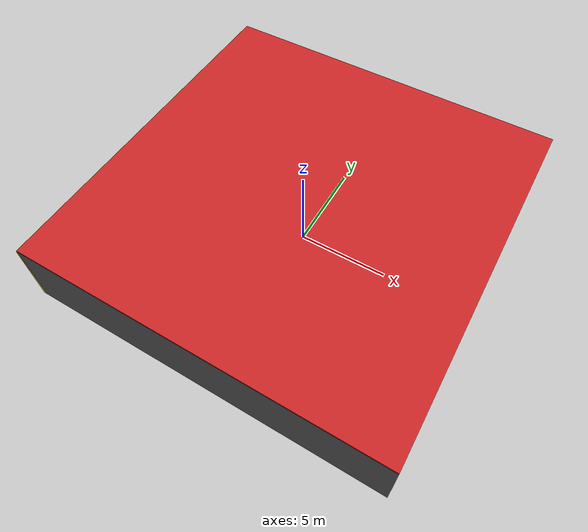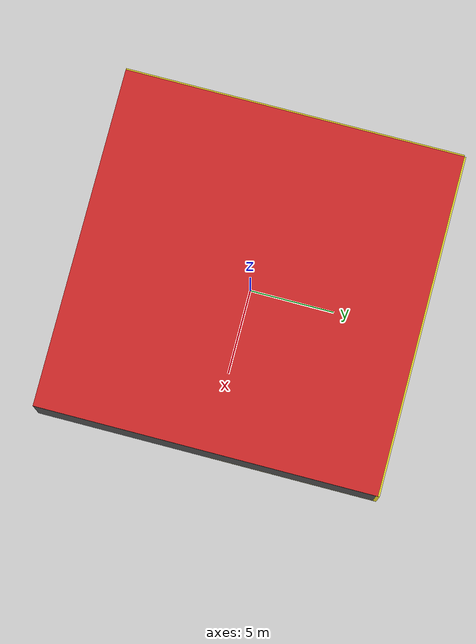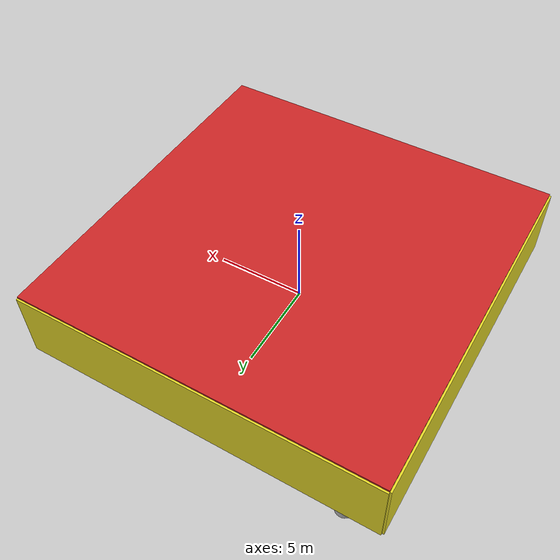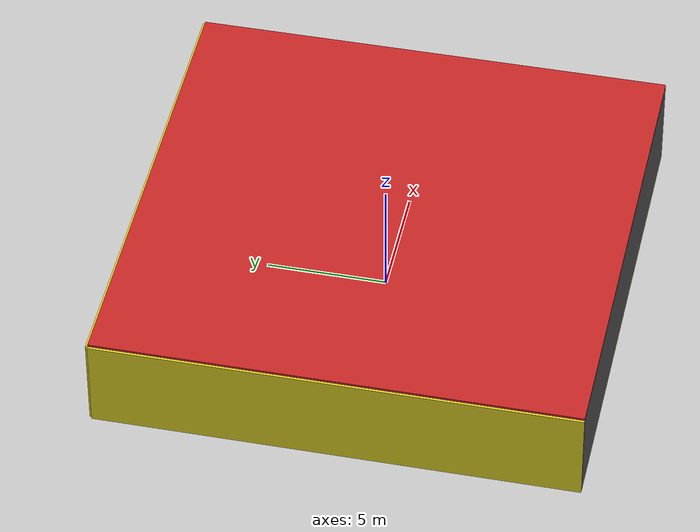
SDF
<sdf version="1.4">
 <world name="default">
  <physics type="ode">
   <max_step_size>0.001</max_step_size>
   <real_time_factor>1</real_time_factor>
   <real_time_update_rate>1000</real_time_update_rate>
   <gravity>0 0 -9.8</gravity>
  </physics>
  <scene><ambient>0.4 0.4 0.4 1</ambient><background>0.7 0.7 0.7 1</background><shadows>1</shadows></scene>
  <model name="Surrounding">
   <static>1</static>
   <link name="Ceiling">
    <collision name="Ceiling_Collision"><geometry><box><size>20 20 0.1</size></box></geometry></collision>
    <visual name="Ceiling_Visual">
     <geometry><box><size>20 20 0.1</size></box></geometry>
     <material>
      <script><uri>file://media/materials/scripts/gazebo.material</uri><name>Gazebo/Red</name></script>
     </material>
    </visual>
    <pose>0 0 4.05 0 0 0</pose>
   </link>
   <link name="Wall_South">
    <collision name="Wall_South_Collision">
     <geometry><box><size>20 0 4</size></box></geometry>
     <pose>0 0 2 0 -0 0</pose>
    </collision>
    <visual name="Wall_South_Visual">
     <pose>0 0 2 0 -0 0</pose>
     <geometry><box><size>20 0 4</size></box></geometry>
     <material>
      <script><uri>file://media/materials/scripts/gazebo.material</uri><name>Gazebo/DarkGrey</name></script>
     </material>
    </visual>
    <velocity_decay><linear>0</linear><angular>0</angular></velocity_decay>
    <pose>0 -10 0 0 -0 0</pose>
   </link>
   <link name="Wall_East">
    <collision name="Wall_21_Collision">
     <geometry><box><size>20 0 4</size></box></geometry>
     <pose>0 0 2 0 -0 0</pose>
    </collision>
    <visual name="Wall_21_Visual">
     <pose>0 0 2 0 -0 0</pose>
     <geometry><box><size>20 0 4</size></box></geometry>
     <material>
      <script><uri>file://media/materials/scripts/gazebo.material</uri><name>Gazebo/DarkGrey</name></script>
     </material>
    </visual>
    <velocity_decay><linear>0</linear><angular>0</angular></velocity_decay>
    <pose>10 0 0 0 -0 1.5708</pose>
   </link>
   <link name="Wall_North">
    <collision name="Wall_22_Collision">
     <geometry><box><size>20 0.2 4</size></box></geometry>
     <pose>0 0 2 0 -0 0</pose>
    </collision>
    <visual name="Wall_22_Visual">
     <pose>0 0 2 0 -0 0</pose>
     <geometry><box><size>20 0.2 4</size></box></geometry>
     <material>
      <script><uri>file://media/materials/scripts/gazebo.material</uri><name>Gazebo/YellowGlow</name></script>
     </material>
    </visual>
    <velocity_decay><linear>0</linear><angular>0</angular></velocity_decay>
    <pose>0 10 0 0 -0 0</pose>
   </link>
   <link name="Wall_West">
    <collision name="Wall_23_Collision">
     <geometry><box><size>20 0.2 4</size></box></geometry>
     <pose>0 0 2 0 -0 0</pose>
    </collision>
    <visual name="Wall_23_Visual">
     <pose>0 0 2 0 -0 0</pose>
     <geometry><box><size>20 0.2 4</size></box></geometry>
     <material>
      <script><uri>file://media/materials/scripts/gazebo.material</uri><name>Gazebo/Yellow</name></script>
     </material>
    </visual>
    <velocity_decay><linear>0</linear><angular>0</angular></velocity_decay>
    <pose>-10 0 0 0 0 -1.5708</pose>
   </link>
   <link name="Ground_link">
    <collision name="collision">
     <pose>0 0 .05 0 -0 0</pose>
     <geometry><box><size>20 20 0.1</size></box></geometry>
    </collision>
    <visual name="visual">
     <pose>0 0 .05 0 -0 0</pose>
     <geometry><box><size>20 20 0.1</size></box></geometry>
     <material>
      <script><uri>file://media/materials/scripts/gazebo.material</uri><name>Gazebo/ZincYellow</name></script>
     </material>
    </visual>
   </link>
   <static>1</static>
  </model>
  <spherical_coordinates>
   <surface_model>EARTH_WGS84</surface_model>
   <latitude_deg>0</latitude_deg>
   <longitude_deg>0</longitude_deg>
   <elevation>0</elevation>
   <heading_deg>0</heading_deg>
  </spherical_coordinates>
  <light name="lightball_0" type="diffuse">
   <diffuse>0.8 0.8 0.8 1</diffuse>
   <specular>0.2 0.2 0.2 1</specular>
   <attenuation>
    <range>100</range>
    <constant>0.7</constant>
    <linear>0.01</linear>
    <quadratic>0.001</quadratic>
   </attenuation>
   <direction>-0.5 0.1 -0.9</direction>
   <pose>0.923615970748 0.256932590733 2.10584769551 0 0 0</pose>
  </light>
  <light name="lightball_1" type="diffuse">
   <diffuse>0.8 0.8 0.8 1</diffuse>
   <specular>0.2 0.2 0.2 1</specular>
   <attenuation>
    <range>100</range>
    <constant>0.7</constant>
    <linear>0.01</linear>
    <quadratic>0.001</quadratic>
   </attenuation>
   <direction>-0.5 0.1 -0.9</direction>
   <pose>7.88238294513 -6.71322670235 3.81496600851 0 0 0</pose>
  </light>
  <light name="lightball_2" type="diffuse">
   <diffuse>0.8 0.8 0.8 1</diffuse>
   <specular>0.2 0.2 0.2 1</specular>
   <attenuation>
    <range>100</range>
    <constant>0.7</constant>
    <linear>0.01</linear>
    <quadratic>0.001</quadratic>
   </attenuation>
   <direction>-0.5 0.1 -0.9</direction>
   <pose>7.74638362202 -7.63459371812 2.52866183932 0 0 0</pose>
  </light>
  <light name="lightball_3" type="diffuse">
   <diffuse>0.8 0.8 0.8 1</diffuse>
   <specular>0.2 0.2 0.2 1</specular>
   <attenuation>
    <range>100</range>
    <constant>0.7</constant>
    <linear>0.01</linear>
    <quadratic>0.001</quadratic>
   </attenuation>
   <direction>-0.5 0.1 -0.9</direction>
   <pose>2.39004740525 5.11336652445 3.43039485674 0 0 0</pose>
  </light>
  <light name="lightball_4" type="diffuse">
   <diffuse>0.8 0.8 0.8 1</diffuse>
   <specular>0.2 0.2 0.2 1</specular>
   <attenuation>
    <range>100</range>
    <constant>0.7</constant>
    <linear>0.01</linear>
    <quadratic>0.001</quadratic>
   </attenuation>
   <direction>-0.5 0.1 -0.9</direction>
   <pose>-5.97959566942 5.39478188992 1.96989845178 0 0 0</pose>
  </light>
  <light name="lightball_5" type="diffuse">
   <diffuse>0.8 0.8 0.8 1</diffuse>
   <specular>0.2 0.2 0.2 1</specular>
   <attenuation>
    <range>100</range>
    <constant>0.7</constant>
    <linear>0.01</linear>
    <quadratic>0.001</quadratic>
   </attenuation>
   <direction>-0.5 0.1 -0.9</direction>
   <pose>1.59768578194 1.8072336184 1.66924132663 0 0 0</pose>
  </light>
  <light name="lightball_6" type="diffuse">
   <diffuse>0.8 0.8 0.8 1</diffuse>
   <specular>0.2 0.2 0.2 1</specular>
   <attenuation>
    <range>100</range>
    <constant>0.7</constant>
    <linear>0.01</linear>
    <quadratic>0.001</quadratic>
   </attenuation>
   <direction>-0.5 0.1 -0.9</direction>
   <pose>1.22882137135 -8.19843709567 2.76686661271 0 0 0</pose>
  </light>
  <light name="lightball_7" type="diffuse">
   <diffuse>0.8 0.8 0.8 1</diffuse>
   <specular>0.2 0.2 0.2 1</specular>
   <attenuation>
    <range>100</range>
    <constant>0.7</constant>
    <linear>0.01</linear>
    <quadratic>0.001</quadratic>
   </attenuation>
   <direction>-0.5 0.1 -0.9</direction>
   <pose>3.8558055397 -5.58459350334 1.4573146858 0 0 0</pose>
  </light>
  <light name="lightball_8" type="diffuse">
   <diffuse>0.8 0.8 0.8 1</diffuse>
   <specular>0.2 0.2 0.2 1</specular>
   <attenuation>
    <range>100</range>
    <constant>0.7</constant>
    <linear>0.01</linear>
    <quadratic>0.001</quadratic>
   </attenuation>
   <direction>-0.5 0.1 -0.9</direction>
   <pose>-5.43644414933 -6.11028699168 1.66642161251 0 0 0</pose>
  </light>
  <light name="lightball_9" type="diffuse">
   <diffuse>0.8 0.8 0.8 1</diffuse>
   <specular>0.2 0.2 0.2 1</specular>
   <attenuation>
    <range>100</range>
    <constant>0.7</constant>
    <linear>0.01</linear>
    <quadratic>0.001</quadratic>
   </attenuation>
   <direction>-0.5 0.1 -0.9</direction>
   <pose>-5.05393026013 -6.41408230104 2.44157694522 0 0 0</pose>
  </light>
  <light name="lightball_10" type="diffuse">
   <diffuse>0.8 0.8 0.8 1</diffuse>
   <specular>0.2 0.2 0.2 1</specular>
   <attenuation>
    <range>100</range>
    <constant>0.7</constant>
    <linear>0.01</linear>
    <quadratic>0.001</quadratic>
   </attenuation>
   <direction>-0.5 0.1 -0.9</direction>
   <pose>-2.8634830656 -5.89545754307 1.85496011219 0 0 0</pose>
  </light>
  <light name="lightball_11" type="diffuse">
   <diffuse>0.8 0.8 0.8 1</diffuse>
   <specular>0.2 0.2 0.2 1</specular>
   <attenuation>
    <range>100</range>
    <constant>0.7</constant>
    <linear>0.01</linear>
    <quadratic>0.001</quadratic>
   </attenuation>
   <direction>-0.5 0.1 -0.9</direction>
   <pose>7.64063599589 7.03952257073 1.08104561994 0 0 0</pose>
  </light>
  <light name="lightball_12" type="diffuse">
   <diffuse>0.8 0.8 0.8 1</diffuse>
   <specular>0.2 0.2 0.2 1</specular>
   <attenuation>
    <range>100</range>
    <constant>0.7</constant>
    <linear>0.01</linear>
    <quadratic>0.001</quadratic>
   </attenuation>
   <direction>-0.5 0.1 -0.9</direction>
   <pose>1.82722125112 5.40444774176 3.85116886233 0 0 0</pose>
  </light>
  <include>
   <uri>model://textured_shapes</uri>
   <pose>-7.66915556662 8.09021212047 0 0 0 0.186808375719</pose>
  </include>
  <include><uri>model://cabinet</uri><pose>-0.956846060296 -4.21749551536 0 0 0 0.439353860422</pose></include>
  <include>
   <uri>model://textured_shapes</uri>
   <pose>2.01275313659 -5.05199185448 0 0 0 0.6480146416</pose>
  </include>
  <include>
   <uri>model://construction_cone</uri>
   <pose>1.93883195003 0.895546064478 0 0 0 2.68478113603</pose>
  </include>
  <include><uri>model://table</uri><pose>7.30440431176 -1.78610260742 0 0 0 1.06408418547</pose></include>
  <include>
   <uri>model://robocup_3Dsim_goal</uri>
   <pose>7.61062048638 7.8784491657 0 0 0 3.09429404395</pose>
  </include>
 </world>
</sdf>

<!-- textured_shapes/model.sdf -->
<sdf version="1.6">
  <model name="textured_shapes">
    <pose>0 0 0.5 0 0 0</pose>
    <link name="box">
      <pose>0 -1.5 0 0 0 0</pose>
      <collision name="collision">
        <geometry>
          <box>
            <size>1 1 1</size>
          </box>
        </geometry>
      </collision>
      <visual name="visual">
        <geometry>
          <box>
            <size>1 1 1</size>
          </box>
        </geometry>
        <material>
          <script>
            <uri>model://../model_source/models/textured_shapes/materials/scripts</uri>
            <uri>model://../model_source/models/textured_shapes/materials/textures</uri>
            <name>TexturedShape/Squares</name>
          </script>
        </material>
      </visual>
    </link>
    <link name="sphere">
      <collision name="collision">
        <geometry>
          <sphere>
            <radius>0.5</radius>
          </sphere>
        </geometry>
      </collision>
      <visual name="visual">
        <geometry>
          <sphere>
            <radius>0.5</radius>
          </sphere>
        </geometry>
        <material>
          <script>
            <uri>model://../model_source/models/textured_shapes/materials/scripts</uri>
            <uri>model://../model_source/models/textured_shapes/materials/textures</uri>
            <name>TexturedShape/Squares</name>
          </script>
        </material>
      </visual>
    </link>
    <link name="cylinder">
      <pose>0 1.5 0 0 0 0</pose>
      <collision name="collision">
        <geometry>
          <cylinder>
            <radius>0.5</radius>
            <length>1</length>
          </cylinder>
        </geometry>
      </collision>
      <visual name="visual">
        <geometry>
          <cylinder>
            <radius>0.5</radius>
            <length>1</length>
          </cylinder>
        </geometry>
        <material>
          <script>
            <uri>model://../model_source/models/textured_shapes/materials/scripts</uri>
            <uri>model://../model_source/models/textured_shapes/materials/textures</uri>
            <name>TexturedShape/Squares</name>
          </script>
        </material>
      </visual>
    </link>
  </model>
</sdf>

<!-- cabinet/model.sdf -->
<sdf version="1.5">
  <model name="cabinet">
    <static>true</static>
    <link name="cabinet_bottom_plate">
      <inertial>
        <pose>0 0 -1 0 0 0</pose>
        <inertia>
          <ixx>2.050000</ixx>
          <ixy>0</ixy>
          <ixz>0</ixz>
          <iyy>2.050000</iyy>
          <iyz>0</iyz>
          <izz>2.050000</izz>
        </inertia>
        <mass>25.000000</mass>
      </inertial>
      <collision name="cabinet_bottom_plate_geom">
        <pose>0 0 0.010000 0 0 0</pose>
        <geometry>
          <box>
            <size>0.450000 0.450000 0.020000</size>
          </box>
        </geometry>
      </collision>
      <visual name="cabinet_bottom_plate_geom_visual">
        <pose>0 0 0.010000 0 0 0</pose>
        <geometry>
          <box>
            <size>0.450000 0.450000 0.020000</size>
          </box>
        </geometry>
        <material>
          <script>
            <uri>model://media/materials/scripts/gazebo.material</uri>
            <name>Gazebo/Wood</name>
          </script>
        </material>
      </visual>
      <collision name="cabinet_bottom_plate_geom_cabinet_back_plate">
        <pose>0.235000 0 0.510000 0 0 0</pose>
        <geometry>
          <box>
            <size>0.020000 0.450000 1.020000</size>
          </box>
        </geometry>
      </collision>
      <visual name="cabinet_bottom_plate_geom_cabinet_back_plate_visual">
        <pose>0.235000 0 0.510000 0 0 0</pose>
        <geometry>
          <box>
            <size>0.020000 0.450000 1.020000</size>
          </box>
        </geometry>
        <material>
          <script>
            <uri>model://media/materials/scripts/gazebo.material</uri>
            <name>Gazebo/Wood</name>
          </script>
        </material>
      </visual>
      <collision name="cabinet_bottom_plate_geom_cabinet_left_plate">
        <pose>0 0.235000 0.510000 0 0 0</pose>
        <geometry>
          <box>
            <size>0.450000 0.020000 1.020000</size>
          </box>
        </geometry>
      </collision>
      <visual name="cabinet_bottom_plate_geom_cabinet_left_plate_visual">
        <pose>0 0.235000 0.510000 0 0 0</pose>
        <geometry>
          <box>
            <size>0.450000 0.020000 1.020000</size>
          </box>
        </geometry>
        <material>
          <script>
            <uri>model://media/materials/scripts/gazebo.material</uri>
            <name>Gazebo/Wood</name>
          </script>
        </material>
      </visual>
      <collision name="cabinet_bottom_plate_geom_cabinet_middle_plate">
        <pose>0 0 0.510000 0 0 0</pose>
        <geometry>
          <box>
            <size>0.450000 0.450000 0.020000</size>
          </box>
        </geometry>
      </collision>
      <visual name="cabinet_bottom_plate_geom_cabinet_middle_plate_visual">
        <pose>0 0 0.510000 0 0 0</pose>
        <geometry>
          <box>
            <size>0.450000 0.450000 0.020000</size>
          </box>
        </geometry>
        <material>
          <script>
            <uri>model://media/materials/scripts/gazebo.material</uri>
            <name>Gazebo/Wood</name>
          </script>
        </material>
      </visual>
      <collision name="cabinet_bottom_plate_geom_cabinet_right_plate">
        <pose>0 -0.235000 0.510000 0 0 0</pose>
        <geometry>
          <box>
            <size>0.450000 0.020000 1.020000</size>
          </box>
        </geometry>
      </collision>
      <visual name="cabinet_bottom_plate_geom_cabinet_right_plate_visual">
        <pose>0 -0.235000 0.510000 0 0 0</pose>
        <geometry>
          <box>
            <size>0.450000 0.020000 1.020000</size>
          </box>
        </geometry>
        <material>
          <script>
            <uri>model://media/materials/scripts/gazebo.material</uri>
            <name>Gazebo/Wood</name>
          </script>
        </material>
      </visual>
      <collision name="cabinet_bottom_plate_geom_cabinet_top_plate">
        <pose>0 0 1.010000 0 0 0</pose>
        <geometry>
          <box>
            <size>0.450000 0.450000 0.020000</size>
          </box>
        </geometry>
      </collision>
      <visual name="cabinet_bottom_plate_geom_cabinet_top_plate_visual">
        <pose>0 0 1.010000 0 0 0</pose>
        <geometry>
          <box>
            <size>0.450000 0.450000 0.020000</size>
          </box>
        </geometry>
        <material>
          <script>
            <uri>model://media/materials/scripts/gazebo.material</uri>
            <name>Gazebo/Wood</name>
          </script>
        </material>
      </visual>
    </link>
  </model>
</sdf>

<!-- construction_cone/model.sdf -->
<sdf version="1.5">
  <model name="Construction Cone">
    <link name="link">
      <collision name="collision">
        <geometry>
          <mesh>
            <scale>10 10 10</scale>
            <uri>file://isr-testbed/construction_cone/meshes/construction_cone.dae</uri>
          </mesh>
        </geometry>
      </collision>
      <visual name="visual">
        <geometry>
          <mesh>
            <scale>10 10 10</scale>
            <uri>file://isr-testbed/construction_cone/meshes/construction_cone.dae</uri>
          </mesh>
        </geometry>
      </visual>
    </link>
  </model>
</sdf>

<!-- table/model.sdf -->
<sdf version="1.5">
  <model name="table">
    <static>true</static>
    <link name="link">
      <collision name="surface">
        <pose>0 0 1.0 0 0 0</pose>
        <geometry>
          <box>
            <size>1.5 0.8 0.03</size>
          </box>
        </geometry>
        <surface>
          <friction>
            <ode>
              <mu>0.6</mu>
              <mu2>0.6</mu2>
            </ode>
          </friction>
        </surface>
      </collision>
      <visual name="visual1">
        <pose>0 0 1.0 0 0 0</pose>
        <geometry>
          <box>
            <size>1.5 0.8 0.03</size>
          </box>
        </geometry>
        <material>
          <script>
            <uri>model://media/materials/scripts/gazebo.material</uri>
            <name>Gazebo/Wood</name>
          </script>
        </material>
      </visual>
      <collision name="front_left_leg">
        <pose>0.68 0.38 0.5 0 0 0</pose>
        <geometry>
          <cylinder>
            <radius>0.02</radius>
            <length>1.0</length>
          </cylinder>
        </geometry>
      </collision>
      <visual name="front_left_leg">
        <pose>0.68 0.38 0.5 0 0 0</pose>
        <geometry>
          <cylinder>
            <radius>0.02</radius>
            <length>1.0</length>
          </cylinder>
        </geometry>
        <material>
          <script>
            <uri>model://media/materials/scripts/gazebo.material</uri>
            <name>Gazebo/Grey</name>
          </script>
        </material>
      </visual>
      <collision name="front_right_leg">
        <pose>0.68 -0.38 0.5 0 0 0</pose>
        <geometry>
          <cylinder>
            <radius>0.02</radius>
            <length>1.0</length>
          </cylinder>
        </geometry>
      </collision>
      <visual name="front_right_leg">
        <pose>0.68 -0.38 0.5 0 0 0</pose>
        <geometry>
          <cylinder>
            <radius>0.02</radius>
            <length>1.0</length>
          </cylinder>
        </geometry>
        <material>
          <script>
            <uri>model://media/materials/scripts/gazebo.material</uri>
            <name>Gazebo/Grey</name>
          </script>
        </material>
      </visual>
      <collision name="back_right_leg">
        <pose>-0.68 -0.38 0.5 0 0 0</pose>
        <geometry>
          <cylinder>
            <radius>0.02</radius>
            <length>1.0</length>
          </cylinder>
        </geometry>
      </collision>
      <visual name="back_right_leg">
        <pose>-0.68 -0.38 0.5 0 0 0</pose>
        <geometry>
          <cylinder>
            <radius>0.02</radius>
            <length>1.0</length>
          </cylinder>
        </geometry>
        <material>
          <script>
            <uri>model://media/materials/scripts/gazebo.material</uri>
            <name>Gazebo/Grey</name>
          </script>
        </material>
      </visual>
      <collision name="back_left_leg">
        <pose>-0.68 0.38 0.5 0 0 0</pose>
        <geometry>
          <cylinder>
            <radius>0.02</radius>
            <length>1.0</length>
          </cylinder>
        </geometry>
      </collision>
      <visual name="back_left_leg">
        <pose>-0.68 0.38 0.5 0 0 0</pose>
        <geometry>
          <cylinder>
            <radius>0.02</radius>
            <length>1.0</length>
          </cylinder>
        </geometry>
        <material>
          <script>
            <uri>model://media/materials/scripts/gazebo.material</uri>
            <name>Gazebo/Grey</name>
          </script>
        </material>
      </visual>
    </link>
  </model>
</sdf>

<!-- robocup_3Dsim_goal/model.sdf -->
<sdf version="1.5">
  <model name="robocup_3d_goal">
    <static>true</static>
    <link name="left_post">
      <pose>0 1.05 0.45 0 0 0</pose>
      <collision name="collision">
        <geometry>
          <cylinder>
            <radius>0.05</radius>
            <length>0.9</length>
          </cylinder>
        </geometry>
      </collision>
      <visual name="visual">
        <geometry>
          <cylinder>
            <radius>0.05</radius>
            <length>0.9</length>
          </cylinder>
        </geometry>
        <material>
          <script>
            <uri>file://media/materials/scripts/gazebo.material</uri>
            <name>Gazebo/ZincYellow</name>
          </script>
        </material>
      </visual>
    </link>
    <link name="left_support_horiz_lower">
      <pose>0.30 1.05 0.01 0 0 0</pose>
      <collision name="collision">
        <geometry>
          <box>
            <size>0.50 0.02 0.02</size>
          </box>
        </geometry>
      </collision>
      <visual name="visual">
        <geometry>
          <box>
            <size>0.50 0.02 0.02</size>
          </box>
        </geometry>
        <material>
          <script>
            <uri>file://media/materials/scripts/gazebo.material</uri>
            <name>Gazebo/White</name>
          </script>
        </material>
      </visual>
    </link>
    <link name="left_support_horiz_upper">
      <pose>0.30 1.05 0.79 0 0 0</pose>
      <collision name="collision">
        <geometry>
          <box>
            <size>0.50 0.02 0.02</size>
          </box>
        </geometry>
      </collision>
      <visual name="visual">
        <geometry>
          <box>
            <size>0.50 0.02 0.02</size>
          </box>
        </geometry>
        <material>
          <script>
            <uri>file://media/materials/scripts/gazebo.material</uri>
            <name>Gazebo/White</name>
          </script>
        </material>
      </visual>
    </link>
    <link name="left_support_vertical">
      <pose>0.56 1.05 0.4 0 1.5708 0</pose>
      <collision name="collision">
        <geometry>
          <box>
            <size>0.80 0.02 0.02</size>
          </box>
        </geometry>
      </collision>
      <visual name="visual">
        <geometry>
          <box>
            <size>0.80 0.02 0.02</size>
          </box>
        </geometry>
        <material>
          <script>
            <uri>file://media/materials/scripts/gazebo.material</uri>
            <name>Gazebo/White</name>
          </script>
        </material>
      </visual>
    </link>
    <link name="right_support_horiz_lower">
      <pose>0.30 -1.05 0.01 0 0 0</pose>
      <collision name="collision">
        <geometry>
          <box>
            <size>0.50 0.02 0.02</size>
          </box>
        </geometry>
      </collision>
      <visual name="visual">
        <geometry>
          <box>
            <size>0.50 0.02 0.02</size>
          </box>
        </geometry>
        <material>
          <script>
            <uri>file://media/materials/scripts/gazebo.material</uri>
            <name>Gazebo/White</name>
          </script>
        </material>
      </visual>
    </link>
    <link name="right_support_horiz_upper">
      <pose>0.30 -1.05 0.79 0 0 0</pose>
      <collision name="collision">
        <geometry>
          <box>
            <size>0.50 0.02 0.02</size>
          </box>
        </geometry>
      </collision>
      <visual name="visual">
        <geometry>
          <box>
            <size>0.50 0.02 0.02</size>
          </box>
        </geometry>
        <material>
          <script>
            <uri>file://media/materials/scripts/gazebo.material</uri>
            <name>Gazebo/White</name>
          </script>
        </material>
      </visual>
    </link>
    <link name="right_support_vertical">
      <pose>0.56 -1.05 0.4 0 1.5708 0</pose>
      <collision name="collision">
        <geometry>
          <box>
            <size>0.80 0.02 0.02</size>
          </box>
        </geometry>
      </collision>
      <visual name="visual">
        <geometry>
          <box>
            <size>0.80 0.02 0.02</size>
          </box>
        </geometry>
        <material>
          <script>
            <uri>file://media/materials/scripts/gazebo.material</uri>
            <name>Gazebo/White</name>
          </script>
        </material>
      </visual>
    </link>
    <link name="center_support_horiz_lower">
      <pose>0.56 0 0.01 0 1.5708 0</pose>
      <collision name="collision">
        <geometry>
          <box>
            <size>0.02 2.08 0.02</size>
          </box>
        </geometry>
      </collision>
      <visual name="visual">
        <geometry>
          <box>
            <size>0.02 2.08 0.02</size>
          </box>
        </geometry>
        <material>
          <script>
            <uri>file://media/materials/scripts/gazebo.material</uri>
            <name>Gazebo/White</name>
          </script>
        </material>
      </visual>
    </link>
    <link name="center_support_horiz_upper">
      <pose>0.56 0 0.79 0 1.5708 0</pose>
      <collision name="collision">
        <geometry>
          <box>
            <size>0.02 2.08 0.02</size>
          </box>
        </geometry>
      </collision>
      <visual name="visual">
        <geometry>
          <box>
            <size>0.02 2.08 0.02</size>
          </box>
        </geometry>
        <material>
          <script>
            <uri>file://media/materials/scripts/gazebo.material</uri>
            <name>Gazebo/White</name>
          </script>
        </material>
      </visual>
    </link>
    <link name="right_post">
      <pose>0 -1.05 0.45 0 0 0</pose>
      <collision name="collision">
        <geometry>
          <cylinder>
            <radius>0.05</radius>
            <length>0.9</length>
          </cylinder>
        </geometry>
      </collision>
      <visual name="visual">
        <geometry>
          <cylinder>
            <radius>0.05</radius>
            <length>0.9</length>
          </cylinder>
        </geometry>
        <material>
          <script>
            <uri>file://media/materials/scripts/gazebo.material</uri>
            <name>Gazebo/ZincYellow</name>
          </script>
        </material>
      </visual>
    </link>
    <link name="crossbar">
      <pose>0 0 0.85 1.57 1.57 0</pose>
      <collision name="collision">
        <geometry>
          <cylinder>
            <radius>0.05</radius>
            <length>2.0</length>
          </cylinder>
        </geometry>
      </collision>
      <visual name="visual">
        <geometry>
          <cylinder>
            <radius>0.05</radius>
            <length>2.0</length>
          </cylinder>
        </geometry>
        <material>
          <script>
            <uri>file://media/materials/scripts/gazebo.material</uri>
            <name>Gazebo/ZincYellow</name>
          </script>
        </material>
      </visual>
    </link>
    <link name="center_net">
      <pose>0.56 0 0.40 0 0 0</pose>
      <collision name="collision">
        <geometry>
          <box>
            <size>0.01 2.1 0.80</size>
          </box>
        </geometry>
      </collision>
      <visual name="visual">
        <geometry>
          <box>
            <size>0.01 2.1 0.80</size>
          </box>
        </geometry>
        <material>
          <script>
            <uri>model://../model_source/models/robocup09_spl_field/materials/scripts/</uri>
            <uri>model://../model_source/models/robocup09_spl_field/materials/textures/</uri>
            <name>RoboCup/Net</name>
          </script>
        </material>
      </visual>
    </link>
    <link name="left_net">
      <pose>0.30 1.05 0.40 0 0 0</pose>
      <collision name="collision">
        <geometry>
          <box>
            <size>0.50 0.01 0.76</size>
          </box>
        </geometry>
      </collision>
      <visual name="visual">
        <geometry>
          <box>
            <size>0.50 0.01 0.76</size>
          </box>
        </geometry>
        <material>
          <script>
            <uri>model://../model_source/models/robocup09_spl_field/materials/scripts/</uri>
            <uri>model://../model_source/models/robocup09_spl_field/materials/textures/</uri>
            <name>RoboCup/Net</name>
          </script>
        </material>
      </visual>
    </link>
    <link name="right_net">
      <pose>0.30 -1.05 0.40 0 0 0</pose>
      <collision name="collision">
        <geometry>
          <box>
            <size>0.50 0.01 0.76</size>
          </box>
        </geometry>
      </collision>
      <visual name="visual">
        <geometry>
          <box>
            <size>0.50 0.01 0.76</size>
          </box>
        </geometry>
        <material>
          <script>
            <uri>model://../model_source/models/robocup09_spl_field/materials/scripts/</uri>
            <uri>model://../model_source/models/robocup09_spl_field/materials/textures/</uri>
            <name>RoboCup/Net</name>
          </script>
        </material>
      </visual>
    </link>
  </model>
</sdf>
